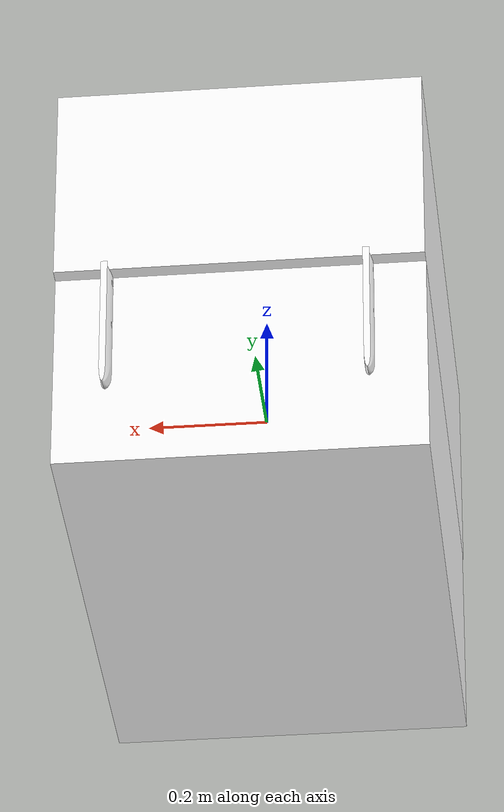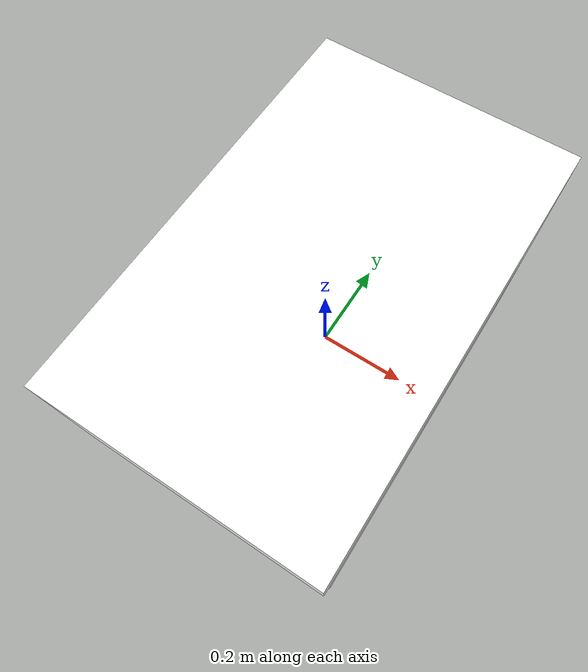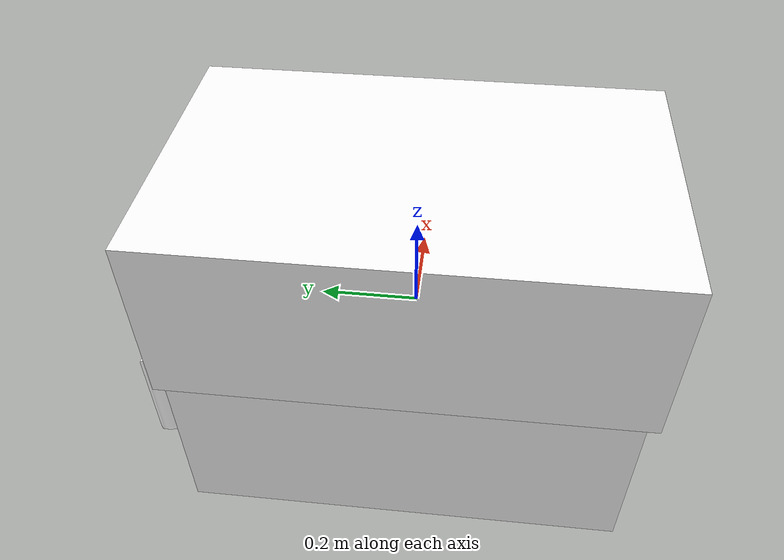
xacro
<?xml version="1.0" encoding="utf-8"?>
<robot
  name="LE1000-URDF-T4">
  <link
    name="base_link">
    <inertial>
      <origin
        xyz="0.0020604 0.014038 0.04597"
        rpy="0 0 0" />
      <mass
        value="15.687" />
      <inertia
        ixx="0.472"
        ixy="-5.4685E-05"
        ixz="-2.1797E-05"
        iyy="0.39383"
        iyz="0.018476"
        izz="0.7806" />
    </inertial>
    <visual>
      <origin
        xyz="0 0 0.175"
        rpy="0 0 0" />
      <geometry>
        <box
          size="0.60 0.95 0.35" />
      </geometry>
      <material
        name="">
        <color
          rgba="1 1 1 1" />
      </material>
    </visual>
    <visual>
      <origin
        xyz="0 0 -0.175"
        rpy="0 0 0" />
      <geometry>
        <box
          size="0.60 0.90 0.35" />
      </geometry>
      <material
        name="">
        <color
          rgba="1 1 1 1" />
      </material>
    </visual>
    <collision>
      <origin
        xyz="0 0 0.175"
        rpy="0 0 0" />
      <geometry>
        <box
          size="0.60 0.95 0.35" />
      </geometry>
    </collision>
    <collision>
      <origin
        xyz="0 0 -0.175"
        rpy="0 0 0" />
      <geometry>
        <box
          size="0.60 0.90 0.35" />
      </geometry>
    </collision>
  </link>
  <link
    name="Joint1">
    <inertial>
      <origin
        xyz="0.024664 -0.068179 6.8383E-08"
        rpy="0 0 0" />
      <mass
        value="0.16562" />
      <inertia
        ixx="0.00061806"
        ixy="6.8728E-06"
        ixz="2.0765E-09"
        iyy="5.1737E-05"
        iyz="2.5949E-09"
        izz="0.0006647" />
    </inertial>
    <visual>
      <origin
        xyz="0 0 0"
        rpy="0 0 0" />
      <geometry>
        <mesh
          filename="package://LE1000-URDF-T4/meshes/Joint1.STL" />
      </geometry>
      <material
        name="">
        <color
          rgba="1 1 1 1" />
      </material>
    </visual>
    <collision>
      <origin
        xyz="0 0 0"
        rpy="0 0 0" />
      <geometry>
        <mesh
          filename="package://LE1000-URDF-T4/meshes/Joint1.STL" />
      </geometry>
    </collision>
  </link>
  <joint
    name="J1"
    type="revolute">
    <origin
      xyz="0.20955 0.47374 -0.06586"
      rpy="1.5708 0 1.5708" />
    <parent
      link="base_link" />
    <child
      link="Joint1" />
    <axis
      xyz="0 -1 0" />
    <limit
      lower="0"
      upper="0"
      effort="0"
      velocity="0" />
  </joint>
  <link
    name="Joint2">
    <inertial>
      <origin
        xyz="0.024664 -0.068179 6.8394E-08"
        rpy="0 0 0" />
      <mass
        value="0.16562" />
      <inertia
        ixx="0.00061806"
        ixy="6.8728E-06"
        ixz="2.0764E-09"
        iyy="5.1737E-05"
        iyz="2.5951E-09"
        izz="0.0006647" />
    </inertial>
    <visual>
      <origin
        xyz="0 0 0"
        rpy="0 0 0" />
      <geometry>
        <mesh
          filename="package://LE1000-URDF-T4/meshes/Joint2.STL" />
      </geometry>
      <material
        name="">
        <color
          rgba="1 1 1 1" />
      </material>
    </visual>
    <collision>
      <origin
        xyz="0 0 0"
        rpy="0 0 0" />
      <geometry>
        <mesh
          filename="package://LE1000-URDF-T4/meshes/Joint2.STL" />
      </geometry>
    </collision>
  </link>
  <joint
    name="J2"
    type="revolute">
    <origin
      xyz="-0.20955 0.47374 -0.06586"
      rpy="1.5708 0 1.5708" />
    <parent
      link="base_link" />
    <child
      link="Joint2" />
    <axis
      xyz="0 -1 0" />
    <limit
      lower="0"
      upper="0"
      effort="0"
      velocity="0" />
  </joint>
</robot>
